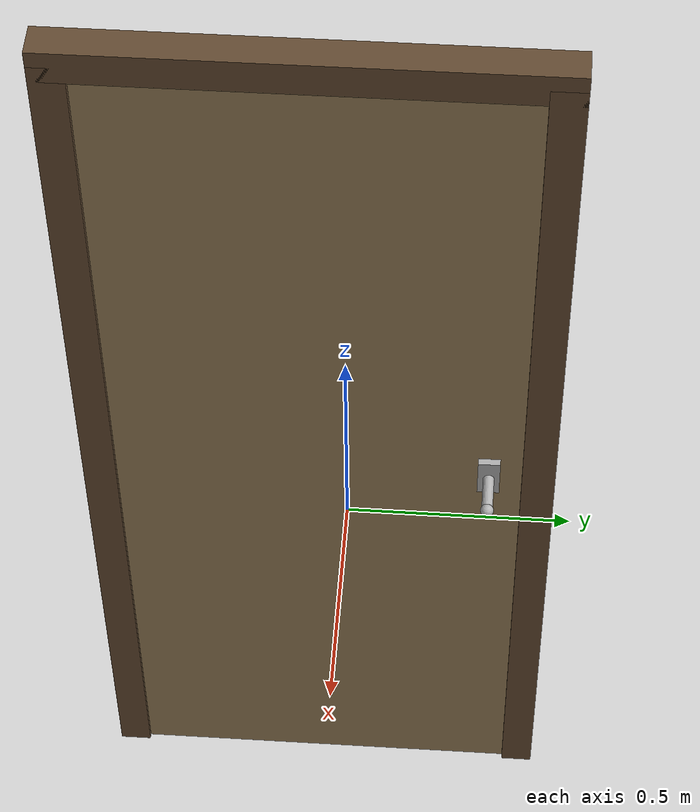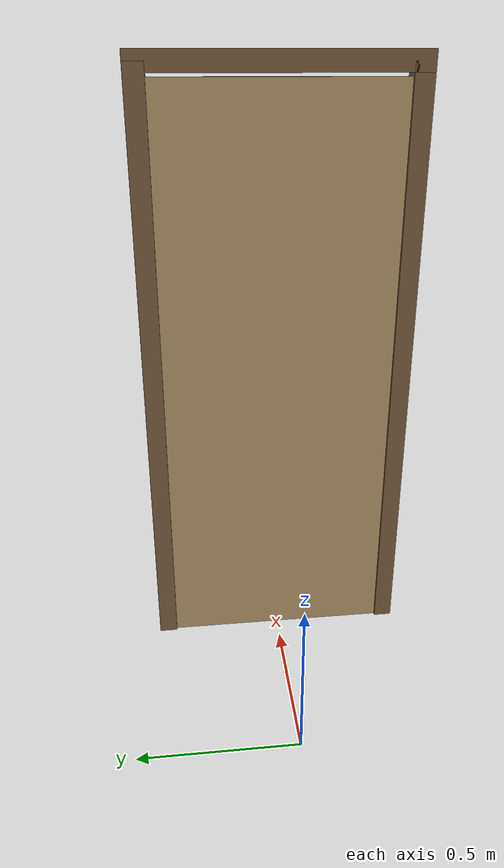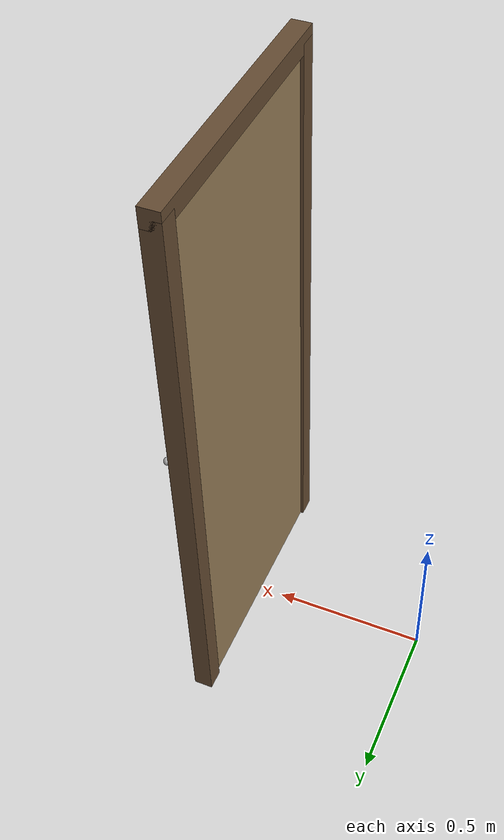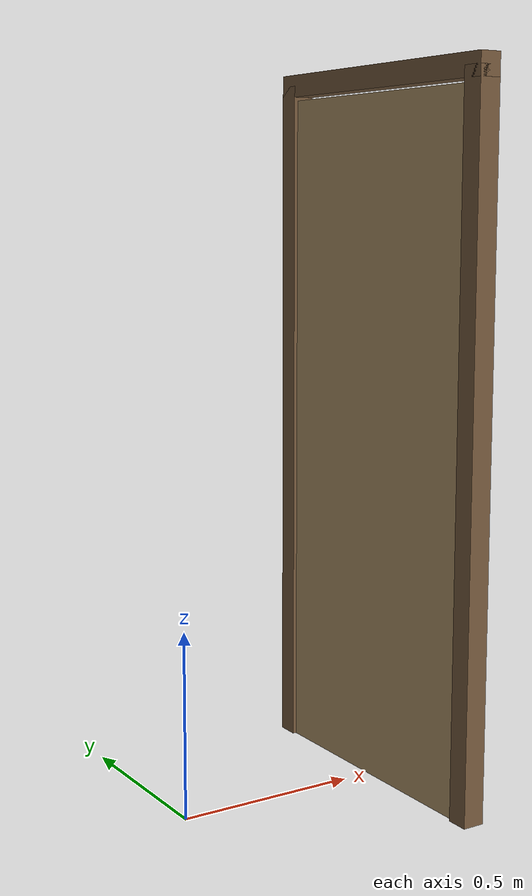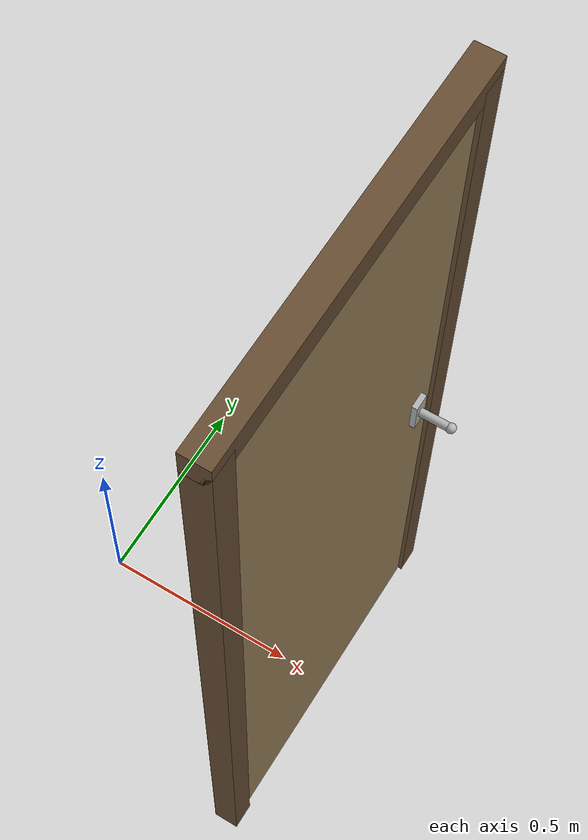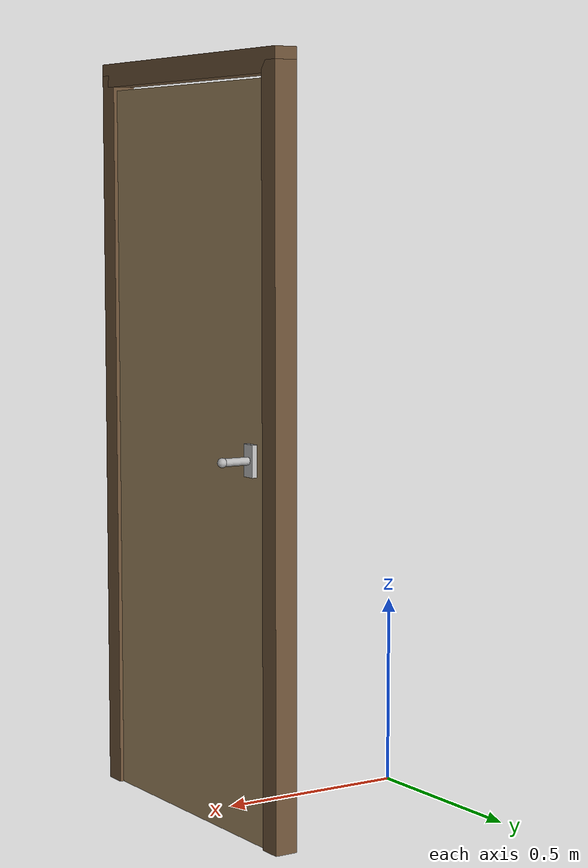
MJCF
<mujoco model="door">

  <asset>
    <material name="door_frame_mat" rgba="0.4 0.3 0.2 1"/>
    <material name="door_panel_mat" rgba="0.6 0.5 0.35 1"/>
    <material name="handle_mat" rgba="0.7 0.7 0.7 1" specular="0.8" shininess="0.5"/>
  </asset>

  <worldbody>
    <!-- Door assembly positioned in front of the robot -->
    <body name="door_frame" pos="0.6 0.0 0.0">
      <!-- Door frame (fixed to world) -->
      <!-- Left frame post -->
      <geom name="frame_left" type="box" size="0.03 0.03 0.95" pos="0 -0.4 0.95"
            material="door_frame_mat"/>
      <!-- Right frame post -->
      <geom name="frame_right" type="box" size="0.03 0.03 0.95" pos="0 0.4 0.95"
            material="door_frame_mat"/>
      <!-- Top frame -->
      <geom name="frame_top" type="box" size="0.03 0.43 0.03" pos="0 0.0 1.9"
            material="door_frame_mat"/>

      <!-- Door panel (hinged on the left side) -->
      <body name="door_panel" pos="0 -0.37 0.0">
        <joint name="door_hinge" type="hinge" axis="0 0 1" pos="0 0 0"
               range="0 1.5708" damping="2.0" frictionloss="0.5"/>
        <geom name="door_surface" type="box" size="0.02 0.37 0.93" pos="0 0.37 0.93"
              material="door_panel_mat" mass="8.0"/>

        <!-- Handle assembly (on the right side of the door, at ~1.0m height) -->
        <body name="handle_base" pos="0.025 0.68 0.95">
          <!-- Handle backplate -->
          <geom name="handle_plate" type="box" size="0.008 0.02 0.04"
                material="handle_mat"/>

          <!-- Lever handle (rotates down when pressed) -->
          <body name="handle_lever" pos="0 0 0">
            <joint name="handle_joint" type="hinge" axis="0 1 0" pos="0 0 0"
                   range="0 0.7854" damping="0.3" stiffness="2.0"/>
            <!-- Horizontal part of lever -->
            <geom name="handle_grip" type="capsule" size="0.01"
                  fromto="0 0 0 0.08 0 0" material="handle_mat"/>
            <!-- Slight downward curve at end -->
            <geom name="handle_end" type="sphere" size="0.012" pos="0.08 0 0"
                  material="handle_mat"/>
          </body>
        </body>
      </body>
    </body>
  </worldbody>
</mujoco>
